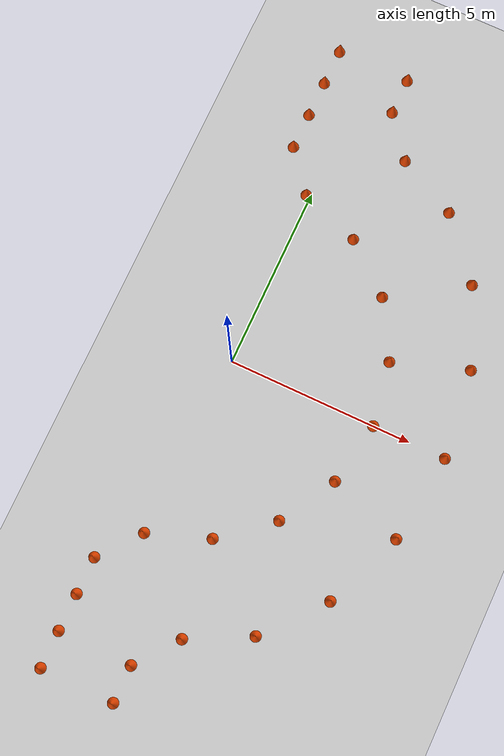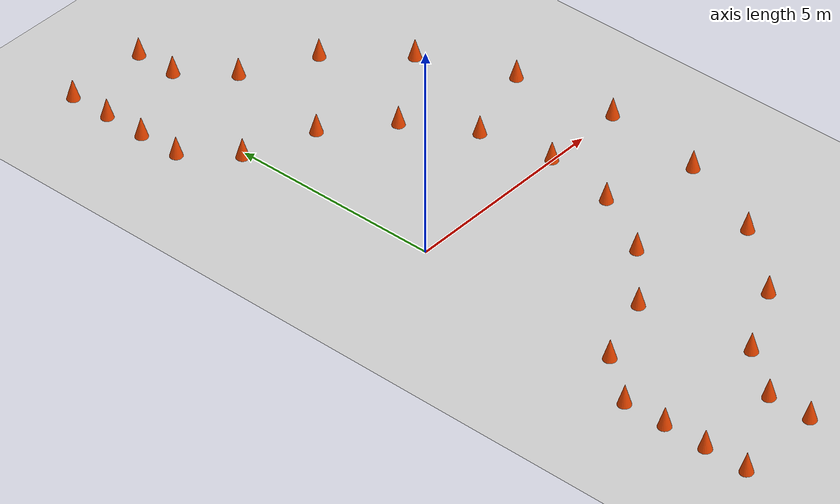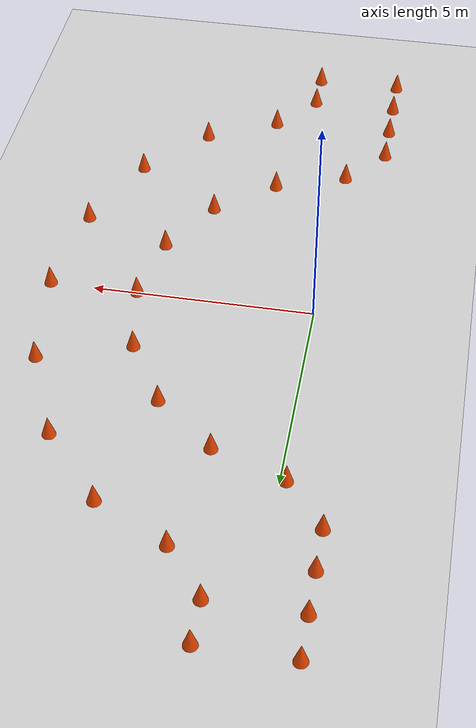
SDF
<?xml version="1.0"?>
<sdf version="1.10">
  <world name="half_roundabout">

    <plugin filename="gz-sim-physics-system"
            name="gz::sim::systems::Physics"/>
    <plugin filename="gz-sim-sensors-system"
            name="gz::sim::systems::Sensors">
      <render_engine>ogre2</render_engine>
    </plugin>
    <plugin filename="gz-sim-scene-broadcaster-system"
            name="gz::sim::systems::SceneBroadcaster"/>
    <plugin filename="gz-sim-user-commands-system"
            name="gz::sim::systems::UserCommands"/>

    <light name="sun" type="directional">
      <cast_shadows>true</cast_shadows>
      <pose>0 0 10 0 0 0</pose>
      <diffuse>1 1 1 1</diffuse>
      <specular>0.5 0.5 0.5 1</specular>
      <direction>-0.5 0.1 -0.9</direction>
    </light>

    <model name="ground_plane">
      <static>true</static>
      <link name="link">
        <collision name="collision">
          <geometry><plane><normal>0 0 1</normal></plane></geometry>
        </collision>
        <visual name="visual">
          <geometry><plane><normal>0 0 1</normal><size>100 100</size></plane></geometry>
          <material>
            <ambient>0.8 0.8 0.8 1</ambient>
            <diffuse>0.8 0.8 0.8 1</diffuse>
          </material>
        </visual>
      </link>
    </model>

    <!-- ── Entry straight left wall (x=-1) ── -->
    <model name="cone_entry_left_9"><static>true</static><pose>-1.00 -9.00 0.25 0 0 0</pose><link name="link"><visual name="visual"><geometry><cone><radius>0.15</radius><length>0.5</length></cone></geometry><material><ambient>1 0.3 0 1</ambient><diffuse>1 0.3 0 1</diffuse></material></visual><collision name="collision"><geometry><cone><radius>0.15</radius><length>0.5</length></cone></geometry></collision></link></model>
    <model name="cone_entry_left_8"><static>true</static><pose>-1.00 -8.00 0.25 0 0 0</pose><link name="link"><visual name="visual"><geometry><cone><radius>0.15</radius><length>0.5</length></cone></geometry><material><ambient>1 0.3 0 1</ambient><diffuse>1 0.3 0 1</diffuse></material></visual><collision name="collision"><geometry><cone><radius>0.15</radius><length>0.5</length></cone></geometry></collision></link></model>
    <model name="cone_entry_left_7"><static>true</static><pose>-1.00 -7.00 0.25 0 0 0</pose><link name="link"><visual name="visual"><geometry><cone><radius>0.15</radius><length>0.5</length></cone></geometry><material><ambient>1 0.3 0 1</ambient><diffuse>1 0.3 0 1</diffuse></material></visual><collision name="collision"><geometry><cone><radius>0.15</radius><length>0.5</length></cone></geometry></collision></link></model>
    <model name="cone_entry_left_6"><static>true</static><pose>-1.00 -6.00 0.25 0 0 0</pose><link name="link"><visual name="visual"><geometry><cone><radius>0.15</radius><length>0.5</length></cone></geometry><material><ambient>1 0.3 0 1</ambient><diffuse>1 0.3 0 1</diffuse></material></visual><collision name="collision"><geometry><cone><radius>0.15</radius><length>0.5</length></cone></geometry></collision></link></model>

    <!-- ── Entry straight right wall (x=1) ── -->
    <model name="cone_entry_right_9"><static>true</static><pose>1.00 -9.00 0.25 0 0 0</pose><link name="link"><visual name="visual"><geometry><cone><radius>0.15</radius><length>0.5</length></cone></geometry><material><ambient>1 0.3 0 1</ambient><diffuse>1 0.3 0 1</diffuse></material></visual><collision name="collision"><geometry><cone><radius>0.15</radius><length>0.5</length></cone></geometry></collision></link></model>
    <model name="cone_entry_right_8"><static>true</static><pose>1.00 -8.00 0.25 0 0 0</pose><link name="link"><visual name="visual"><geometry><cone><radius>0.15</radius><length>0.5</length></cone></geometry><material><ambient>1 0.3 0 1</ambient><diffuse>1 0.3 0 1</diffuse></material></visual><collision name="collision"><geometry><cone><radius>0.15</radius><length>0.5</length></cone></geometry></collision></link></model>

    <!-- ── Inner arc cones (circle, centre(-1,0), r=5) ── -->
    <model name="cone_inner_c1"><static>true</static><pose>-0.132 -4.924 0.25 0 0 0</pose><link name="link"><visual name="visual"><geometry><cone><radius>0.15</radius><length>0.5</length></cone></geometry><material><ambient>1 0.3 0 1</ambient><diffuse>1 0.3 0 1</diffuse></material></visual><collision name="collision"><geometry><cone><radius>0.15</radius><length>0.5</length></cone></geometry></collision></link></model>
    <model name="cone_inner_c2"><static>true</static><pose>1.500 -4.330 0.25 0 0 0</pose><link name="link"><visual name="visual"><geometry><cone><radius>0.15</radius><length>0.5</length></cone></geometry><material><ambient>1 0.3 0 1</ambient><diffuse>1 0.3 0 1</diffuse></material></visual><collision name="collision"><geometry><cone><radius>0.15</radius><length>0.5</length></cone></geometry></collision></link></model>
    <model name="cone_inner_c3"><static>true</static><pose>2.830 -3.214 0.25 0 0 0</pose><link name="link"><visual name="visual"><geometry><cone><radius>0.15</radius><length>0.5</length></cone></geometry><material><ambient>1 0.3 0 1</ambient><diffuse>1 0.3 0 1</diffuse></material></visual><collision name="collision"><geometry><cone><radius>0.15</radius><length>0.5</length></cone></geometry></collision></link></model>
    <model name="cone_inner_c4"><static>true</static><pose>3.698 -1.710 0.25 0 0 0</pose><link name="link"><visual name="visual"><geometry><cone><radius>0.15</radius><length>0.5</length></cone></geometry><material><ambient>1 0.3 0 1</ambient><diffuse>1 0.3 0 1</diffuse></material></visual><collision name="collision"><geometry><cone><radius>0.15</radius><length>0.5</length></cone></geometry></collision></link></model>
    <model name="cone_inner_c5"><static>true</static><pose>4.000 0.000 0.25 0 0 0</pose><link name="link"><visual name="visual"><geometry><cone><radius>0.15</radius><length>0.5</length></cone></geometry><material><ambient>1 0.3 0 1</ambient><diffuse>1 0.3 0 1</diffuse></material></visual><collision name="collision"><geometry><cone><radius>0.15</radius><length>0.5</length></cone></geometry></collision></link></model>
    <model name="cone_inner_c6"><static>true</static><pose>3.698 1.710 0.25 0 0 0</pose><link name="link"><visual name="visual"><geometry><cone><radius>0.15</radius><length>0.5</length></cone></geometry><material><ambient>1 0.3 0 1</ambient><diffuse>1 0.3 0 1</diffuse></material></visual><collision name="collision"><geometry><cone><radius>0.15</radius><length>0.5</length></cone></geometry></collision></link></model>
    <model name="cone_inner_c7"><static>true</static><pose>2.830 3.214 0.25 0 0 0</pose><link name="link"><visual name="visual"><geometry><cone><radius>0.15</radius><length>0.5</length></cone></geometry><material><ambient>1 0.3 0 1</ambient><diffuse>1 0.3 0 1</diffuse></material></visual><collision name="collision"><geometry><cone><radius>0.15</radius><length>0.5</length></cone></geometry></collision></link></model>
    <model name="cone_inner_c8"><static>true</static><pose>1.500 4.330 0.25 0 0 0</pose><link name="link"><visual name="visual"><geometry><cone><radius>0.15</radius><length>0.5</length></cone></geometry><material><ambient>1 0.3 0 1</ambient><diffuse>1 0.3 0 1</diffuse></material></visual><collision name="collision"><geometry><cone><radius>0.15</radius><length>0.5</length></cone></geometry></collision></link></model>
    <model name="cone_inner_c9"><static>true</static><pose>-0.132 4.924 0.25 0 0 0</pose><link name="link"><visual name="visual"><geometry><cone><radius>0.15</radius><length>0.5</length></cone></geometry><material><ambient>1 0.3 0 1</ambient><diffuse>1 0.3 0 1</diffuse></material></visual><collision name="collision"><geometry><cone><radius>0.15</radius><length>0.5</length></cone></geometry></collision></link></model>

    <!-- ── Outer arc cones (ellipse, centre(1,0), a=5, b=7) ── -->
    <model name="cone_outer_c1"><static>true</static><pose>1.868 -6.894 0.25 0 0 0</pose><link name="link"><visual name="visual"><geometry><cone><radius>0.15</radius><length>0.5</length></cone></geometry><material><ambient>1 0.3 0 1</ambient><diffuse>1 0.3 0 1</diffuse></material></visual><collision name="collision"><geometry><cone><radius>0.15</radius><length>0.5</length></cone></geometry></collision></link></model>
    <model name="cone_outer_c2"><static>true</static><pose>3.500 -6.062 0.25 0 0 0</pose><link name="link"><visual name="visual"><geometry><cone><radius>0.15</radius><length>0.5</length></cone></geometry><material><ambient>1 0.3 0 1</ambient><diffuse>1 0.3 0 1</diffuse></material></visual><collision name="collision"><geometry><cone><radius>0.15</radius><length>0.5</length></cone></geometry></collision></link></model>
    <model name="cone_outer_c3"><static>true</static><pose>4.830 -4.500 0.25 0 0 0</pose><link name="link"><visual name="visual"><geometry><cone><radius>0.15</radius><length>0.5</length></cone></geometry><material><ambient>1 0.3 0 1</ambient><diffuse>1 0.3 0 1</diffuse></material></visual><collision name="collision"><geometry><cone><radius>0.15</radius><length>0.5</length></cone></geometry></collision></link></model>
    <model name="cone_outer_c4"><static>true</static><pose>5.698 -2.394 0.25 0 0 0</pose><link name="link"><visual name="visual"><geometry><cone><radius>0.15</radius><length>0.5</length></cone></geometry><material><ambient>1 0.3 0 1</ambient><diffuse>1 0.3 0 1</diffuse></material></visual><collision name="collision"><geometry><cone><radius>0.15</radius><length>0.5</length></cone></geometry></collision></link></model>
    <model name="cone_outer_c5"><static>true</static><pose>6.000 0.000 0.25 0 0 0</pose><link name="link"><visual name="visual"><geometry><cone><radius>0.15</radius><length>0.5</length></cone></geometry><material><ambient>1 0.3 0 1</ambient><diffuse>1 0.3 0 1</diffuse></material></visual><collision name="collision"><geometry><cone><radius>0.15</radius><length>0.5</length></cone></geometry></collision></link></model>
    <model name="cone_outer_c6"><static>true</static><pose>5.698 2.394 0.25 0 0 0</pose><link name="link"><visual name="visual"><geometry><cone><radius>0.15</radius><length>0.5</length></cone></geometry><material><ambient>1 0.3 0 1</ambient><diffuse>1 0.3 0 1</diffuse></material></visual><collision name="collision"><geometry><cone><radius>0.15</radius><length>0.5</length></cone></geometry></collision></link></model>
    <model name="cone_outer_c7"><static>true</static><pose>4.830 4.500 0.25 0 0 0</pose><link name="link"><visual name="visual"><geometry><cone><radius>0.15</radius><length>0.5</length></cone></geometry><material><ambient>1 0.3 0 1</ambient><diffuse>1 0.3 0 1</diffuse></material></visual><collision name="collision"><geometry><cone><radius>0.15</radius><length>0.5</length></cone></geometry></collision></link></model>
    <model name="cone_outer_c8"><static>true</static><pose>3.500 6.062 0.25 0 0 0</pose><link name="link"><visual name="visual"><geometry><cone><radius>0.15</radius><length>0.5</length></cone></geometry><material><ambient>1 0.3 0 1</ambient><diffuse>1 0.3 0 1</diffuse></material></visual><collision name="collision"><geometry><cone><radius>0.15</radius><length>0.5</length></cone></geometry></collision></link></model>
    <model name="cone_outer_c9"><static>true</static><pose>1.868 6.894 0.25 0 0 0</pose><link name="link"><visual name="visual"><geometry><cone><radius>0.15</radius><length>0.5</length></cone></geometry><material><ambient>1 0.3 0 1</ambient><diffuse>1 0.3 0 1</diffuse></material></visual><collision name="collision"><geometry><cone><radius>0.15</radius><length>0.5</length></cone></geometry></collision></link></model>

    <!-- ── Exit straight left wall (x=-1) ── -->
    <model name="cone_exit_left_6"><static>true</static><pose>-1.00 6.00 0.25 0 0 0</pose><link name="link"><visual name="visual"><geometry><cone><radius>0.15</radius><length>0.5</length></cone></geometry><material><ambient>1 0.3 0 1</ambient><diffuse>1 0.3 0 1</diffuse></material></visual><collision name="collision"><geometry><cone><radius>0.15</radius><length>0.5</length></cone></geometry></collision></link></model>
    <model name="cone_exit_left_7"><static>true</static><pose>-1.00 7.00 0.25 0 0 0</pose><link name="link"><visual name="visual"><geometry><cone><radius>0.15</radius><length>0.5</length></cone></geometry><material><ambient>1 0.3 0 1</ambient><diffuse>1 0.3 0 1</diffuse></material></visual><collision name="collision"><geometry><cone><radius>0.15</radius><length>0.5</length></cone></geometry></collision></link></model>
    <model name="cone_exit_left_8"><static>true</static><pose>-1.00 8.00 0.25 0 0 0</pose><link name="link"><visual name="visual"><geometry><cone><radius>0.15</radius><length>0.5</length></cone></geometry><material><ambient>1 0.3 0 1</ambient><diffuse>1 0.3 0 1</diffuse></material></visual><collision name="collision"><geometry><cone><radius>0.15</radius><length>0.5</length></cone></geometry></collision></link></model>
    <model name="cone_exit_left_9"><static>true</static><pose>-1.00 9.00 0.25 0 0 0</pose><link name="link"><visual name="visual"><geometry><cone><radius>0.15</radius><length>0.5</length></cone></geometry><material><ambient>1 0.3 0 1</ambient><diffuse>1 0.3 0 1</diffuse></material></visual><collision name="collision"><geometry><cone><radius>0.15</radius><length>0.5</length></cone></geometry></collision></link></model>

    <!-- ── Exit straight right wall (x=1) ── -->
    <model name="cone_exit_right_8"><static>true</static><pose>1.00 8.00 0.25 0 0 0</pose><link name="link"><visual name="visual"><geometry><cone><radius>0.15</radius><length>0.5</length></cone></geometry><material><ambient>1 0.3 0 1</ambient><diffuse>1 0.3 0 1</diffuse></material></visual><collision name="collision"><geometry><cone><radius>0.15</radius><length>0.5</length></cone></geometry></collision></link></model>
    <model name="cone_exit_right_9"><static>true</static><pose>1.00 9.00 0.25 0 0 0</pose><link name="link"><visual name="visual"><geometry><cone><radius>0.15</radius><length>0.5</length></cone></geometry><material><ambient>1 0.3 0 1</ambient><diffuse>1 0.3 0 1</diffuse></material></visual><collision name="collision"><geometry><cone><radius>0.15</radius><length>0.5</length></cone></geometry></collision></link></model>

    <gui fullscreen="0">
      <camera name="user_camera">
        <pose>0 0 25 0 1.57 0</pose>
      </camera>
    </gui>

  </world>
</sdf>
